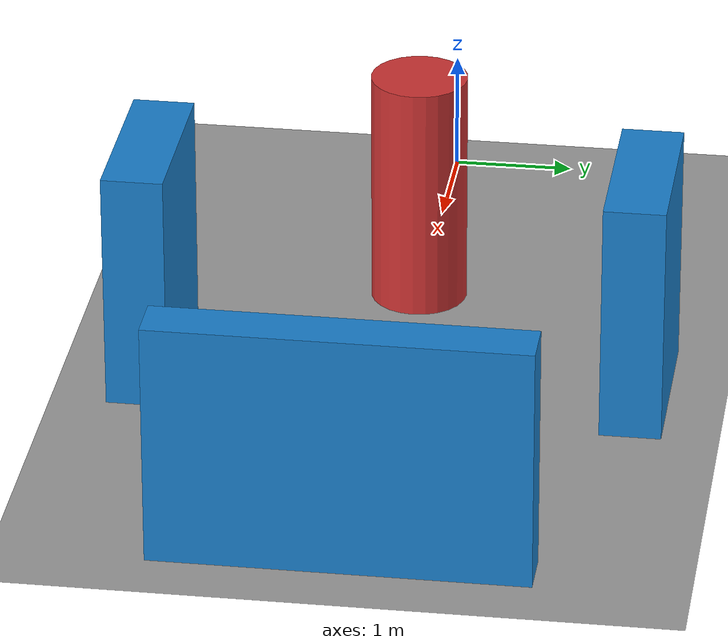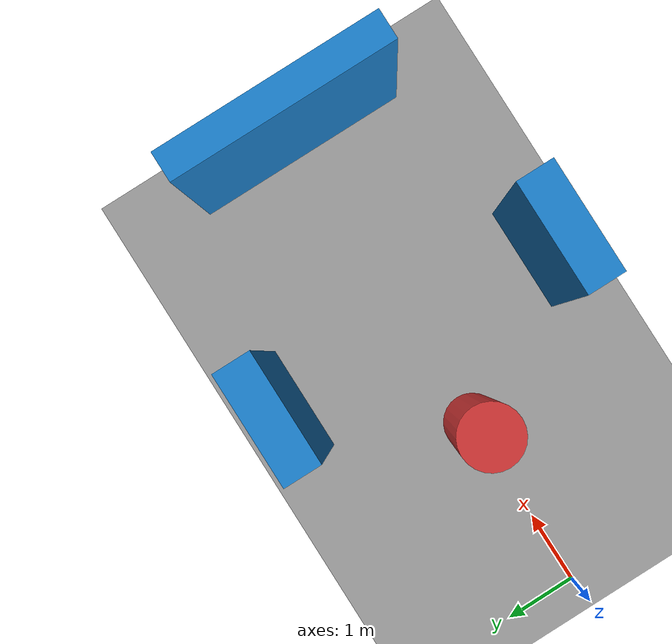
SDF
<?xml version='1.0' encoding='ASCII'?>
<sdf version='1.8'>
  <world name='default'>
    <physics name="1ms" type="ignored">
      <max_step_size>0.001</max_step_size>
      <real_time_factor>1.0</real_time_factor>
    </physics>

    <!-- Core Systems Plugins for Modern Gazebo Sim (Jazzy) -->
    <plugin filename="gz-sim-physics-system" name="gz::sim::systems::Physics"/>
    <plugin filename="gz-sim-user-commands-system" name="gz::sim::systems::UserCommands"/>
    <plugin filename="gz-sim-scene-broadcaster-system" name="gz::sim::systems::SceneBroadcaster"/>
    <plugin filename="gz-sim-sensors-system" name="gz::sim::systems::Sensors">
      <render_engine>ogre2</render_engine>
    </plugin>

    <scene>
      <ambient>1 1 1 1</ambient>
      <background>0.3 0.7 0.9 1</background>
      <shadows>0</shadows>
      <grid>true</grid>
    </scene>

    <light type="directional" name="sun">
      <cast_shadows>true</cast_shadows>
      <pose>0 0 20 0 0 0</pose>
      <diffuse>0.8 0.8 0.8 1</diffuse>
      <specular>0.2 0.2 0.2 1</specular>
      <direction>-0.5 0.1 -0.9</direction>
    </light>

    <!-- Secure Giant Ground Plane -->
    <model name='ground_plane'>
      <static>true</static>
      <link name='link'>
        <collision name='collision'>
          <geometry>
            <plane>
              <normal>0.0 0.0 1</normal>
              <size>100 100</size>
            </plane>
          </geometry>
        </collision>
        <visual name='visual'>
          <geometry>
            <plane>
              <normal>0.0 0.0 1</normal>
              <size>100 100</size>
            </plane>
          </geometry>
          <material>
            <ambient>0.6 0.6 0.6 1</ambient>
            <diffuse>0.6 0.6 0.6 1</diffuse>
          </material>
        </visual>
      </link>
    </model>

    <!-- Offline Structural Wall Pillar 1 -->
    <model name="wall_pillar_1">
      <pose>4.0 2.0 1.0 0 0 0</pose>
      <static>true</static>
      <link name="link">
        <collision name="collision">
          <geometry><box><size>1.5 0.5 2.0</size></box></geometry>
        </collision>
        <visual name="visual">
          <geometry><box><size>1.5 0.5 2.0</size></box></geometry>
          <material><ambient>0.1 0.5 0.8 1</ambient><diffuse>0.1 0.5 0.8 1</diffuse></material>
        </visual>
      </link>
    </model>

    <!-- Offline Structural Wall Pillar 2 -->
    <model name="wall_pillar_2">
      <pose>4.0 -2.0 1.0 0 0 0</pose>
      <static>true</static>
      <link name="link">
        <collision name="collision">
          <geometry><box><size>1.5 0.5 2.0</size></box></geometry>
        </collision>
        <visual name="visual">
          <geometry><box><size>1.5 0.5 2.0</size></box></geometry>
          <material><ambient>0.1 0.5 0.8 1</ambient><diffuse>0.1 0.5 0.8 1</diffuse></material>
        </visual>
      </link>
    </model>

    <!-- Offline Structural Wall Pillar 3 -->
    <model name="wall_pillar_3">
      <pose>7.0 0.0 1.0 0 0 1.57</pose>
      <static>true</static>
      <link name="link">
        <collision name="collision">
          <geometry><box><size>3.0 0.4 2.0</size></box></geometry>
        </collision>
        <visual name="visual">
          <geometry><box><size>3.0 0.4 2.0</size></box></geometry>
          <material><ambient>0.1 0.5 0.8 1</ambient><diffuse>0.1 0.5 0.8 1</diffuse></material>
        </visual>
      </link>
    </model>

    <!-- Center Obstacle Column -->
    <model name="center_column">
      <pose>2.5 0.0 1.0 0 0 0</pose>
      <static>true</static>
      <link name="link">
        <collision name="collision">
          <geometry><cylinder><radius>0.4</radius><length>2.0</length></cylinder></geometry>
        </collision>
        <visual name="visual">
          <geometry><cylinder><radius>0.4</radius><length>2.0</length></cylinder></geometry>
          <material><ambient>0.8 0.2 0.2 1</ambient><diffuse>0.8 0.2 0.2 1</diffuse></material>
        </visual>
      </link>
    </model>
  </world>
</sdf>
